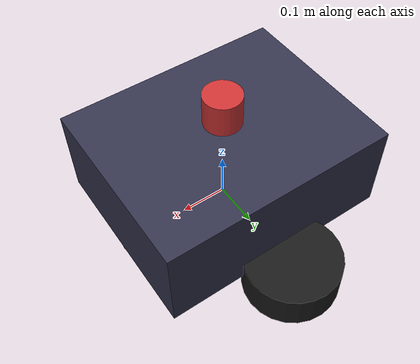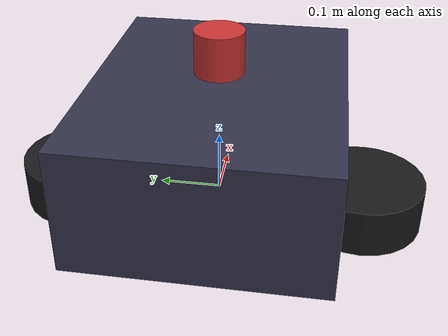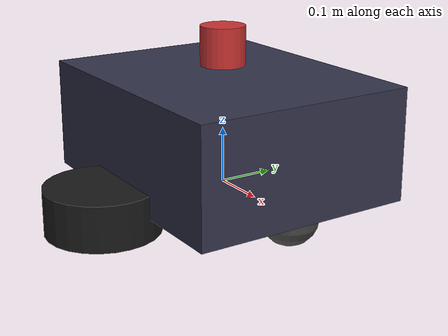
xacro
<?xml version="1.0"?>
<robot xmlns:xacro="http://www.ros.org/wiki/xacro" name="ofr">
  <!-- Parameters -->
  <xacro:property name="base_length" value="0.5"/>
  <xacro:property name="base_width" value="0.4"/>
  <xacro:property name="base_height" value="0.2"/>
  <xacro:property name="wheel_radius" value="0.1"/>
  <xacro:property name="wheel_thickness" value="0.08"/>
  <xacro:property name="wheel_mass" value="2.0"/>
  <xacro:property name="base_mass" value="10.0"/>
  <xacro:property name="caster_radius" value="0.05"/>

  <!-- Base link -->
  <link name="base_footprint"/>

  <joint name="base_joint" type="fixed">
    <parent link="base_footprint"/>
    <child link="base_link"/>
    <origin xyz="0 0 ${wheel_radius}" rpy="0 0 0"/>
  </joint>

  <link name="base_link">
    <inertial>
      <mass value="${base_mass}"/>
      <inertia ixx="0.2" ixy="0" ixz="0" iyy="0.4" iyz="0" izz="0.5"/>
    </inertial>
    <collision>
      <geometry>
        <box size="${base_length} ${base_width} ${base_height}"/>
      </geometry>
    </collision>
    <visual>
      <geometry>
        <box size="${base_length} ${base_width} ${base_height}"/>
      </geometry>
      <material name="chassis_color">
        <color rgba="0.2 0.2 0.3 1.0"/>
      </material>
    </visual>
  </link>

  <!-- Left wheel -->
  <joint name="left_wheel_joint" type="continuous">
    <parent link="base_link"/>
    <child link="left_wheel_link"/>
    <axis xyz="0 1 0"/>
    <origin xyz="0 ${base_width/2 + wheel_thickness/2} -${base_height/2}" rpy="0 0 0"/>
  </joint>

  <link name="left_wheel_link">
    <inertial>
      <mass value="${wheel_mass}"/>
      <inertia ixx="0.05" ixy="0" ixz="0" iyy="0.05" iyz="0" izz="0.09"/>
    </inertial>
    <collision>
      <geometry>
        <cylinder radius="${wheel_radius}" length="${wheel_thickness}"/>
      </geometry>
    </collision>
    <visual>
      <geometry>
        <cylinder radius="${wheel_radius}" length="${wheel_thickness}"/>
      </geometry>
      <material name="wheel_color">
        <color rgba="0.1 0.1 0.1 1.0"/>
      </material>
    </visual>
  </link>

  <!-- Right wheel -->
  <joint name="right_wheel_joint" type="continuous">
    <parent link="base_link"/>
    <child link="right_wheel_link"/>
    <axis xyz="0 1 0"/>
    <origin xyz="0 -${base_width/2 + wheel_thickness/2} -${base_height/2}" rpy="0 0 0"/>
  </joint>

  <link name="right_wheel_link">
    <inertial>
      <mass value="${wheel_mass}"/>
      <inertia ixx="0.05" ixy="0" ixz="0" iyy="0.05" iyz="0" izz="0.09"/>
    </inertial>
    <collision>
      <geometry>
        <cylinder radius="${wheel_radius}" length="${wheel_thickness}"/>
      </geometry>
    </collision>
    <visual>
      <geometry>
        <cylinder radius="${wheel_radius}" length="${wheel_thickness}"/>
      </geometry>
      <material name="wheel_color">
        <color rgba="0.1 0.1 0.1 1.0"/>
      </material>
    </visual>
  </link>

  <!-- Front caster wheel -->
  <joint name="front_caster_joint" type="fixed">
    <parent link="base_link"/>
    <child link="front_caster_link"/>
    <origin xyz="${base_length/2 - caster_radius} 0 -${base_height/2}" rpy="0 0 0"/>
  </joint>

  <link name="front_caster_link">
    <inertial>
      <mass value="0.5"/>
      <inertia ixx="0.001" ixy="0" ixz="0" iyy="0.001" iyz="0" izz="0.001"/>
    </inertial>
    <collision>
      <geometry>
        <sphere radius="${caster_radius}"/>
      </geometry>
    </collision>
    <visual>
      <geometry>
        <sphere radius="${caster_radius}"/>
      </geometry>
      <material name="caster_color">
        <color rgba="0.3 0.3 0.3 1.0"/>
      </material>
    </visual>
  </link>

  <!-- Lidar link -->
  <joint name="lidar_joint" type="fixed">
    <parent link="base_link"/>
    <child link="lidar_link"/>
    <origin xyz="0 0 ${base_height/2 + 0.05}" rpy="0 0 0"/>
  </joint>

  <link name="lidar_link">
    <inertial>
      <mass value="0.3"/>
      <inertia ixx="0.001" ixy="0" ixz="0" iyy="0.001" iyz="0" izz="0.001"/>
    </inertial>
    <collision>
      <geometry>
        <cylinder radius="0.04" length="0.07"/>
      </geometry>
    </collision>
    <visual>
      <geometry>
        <cylinder radius="0.04" length="0.07"/>
      </geometry>
      <material name="lidar_color">
        <color rgba="0.8 0.2 0.2 1.0"/>
      </material>
    </visual>
  </link>

  <!-- IMU link -->
  <joint name="imu_joint" type="fixed">
    <parent link="base_link"/>
    <child link="imu_link"/>
    <origin xyz="0 0 0" rpy="0 0 0"/>
  </joint>

  <link name="imu_link">
    <inertial>
      <mass value="0.1"/>
      <inertia ixx="0.0001" ixy="0" ixz="0" iyy="0.0001" iyz="0" izz="0.0001"/>
    </inertial>
  </link>

  <!-- GNSS link -->
  <joint name="gnss_joint" type="fixed">
    <parent link="base_link"/>
    <child link="gnss_link"/>
    <origin xyz="0.05 0 ${base_height/2 + 0.05}" rpy="0 0 0"/>
  </joint>

  <link name="gnss_link">
    <inertial>
      <mass value="0.1"/>
      <inertia ixx="0.0001" ixy="0" ixz="0" iyy="0.0001" iyz="0" izz="0.0001"/>
    </inertial>
  </link>

  <!-- Gazebo simulation plugins -->
  <gazebo>
    <plugin filename="gz-sim-diff-drive-system" name="gz::sim::systems::DiffDrive">
      <left_joint>left_wheel_joint</left_joint>
      <right_joint>right_wheel_joint</right_joint>
      <wheel_separation>0.4</wheel_separation>
      <wheel_diameter>0.2</wheel_diameter>
      <topic>cmd_vel</topic>
      <max_linear_acceleration>1.0</max_linear_acceleration>
      <max_angular_acceleration>2.0</max_angular_acceleration>
    </plugin>
    <plugin filename="gz-sim-odometry-publisher-system" name="gz::sim::systems::OdometryPublisher">
      <odom_topic>odom</odom_topic>
      <odom_publish_frequency>50</odom_publish_frequency>
    </plugin>
  </gazebo>

  <!-- GPU Lidar (Ray sensor) -->
  <gazebo reference="lidar_link">
    <sensor name="lidar" type="gpu_lidar">
      <topic>scan</topic>
      <pose>0 0 0 0 0 0</pose>
      <ray>
        <scan>
          <horizontal>
            <samples>720</samples>
            <resolution>1</resolution>
            <min_angle>0</min_angle>
            <max_angle>6.28318</max_angle>
          </horizontal>
        </scan>
        <range>
          <min>0.08</min>
          <max>10</max>
          <resolution>0.01</resolution>
        </range>
      </ray>
      <always_on>1</always_on>
      <update_rate>10</update_rate>
      <visualize>false</visualize>
    </sensor>
  </gazebo>

  <!-- IMU sensor -->
  <gazebo reference="imu_link">
    <sensor name="imu" type="imu">
      <topic>imu/data</topic>
      <always_on>true</always_on>
      <update_rate>100</update_rate>
      <visualize>false</visualize>
    </sensor>
  </gazebo>

  <!-- GNSS/NavSat sensor -->
  <gazebo reference="gnss_link">
    <sensor name="navsat" type="navsat">
      <topic>gps/fix</topic>
      <always_on>true</always_on>
      <update_rate>10</update_rate>
      <visualize>false</visualize>
    </sensor>
  </gazebo>

</robot>
